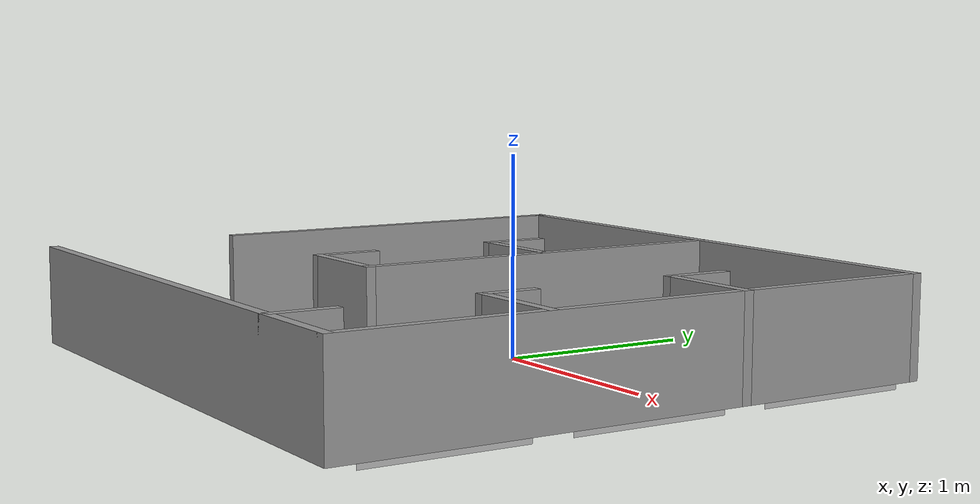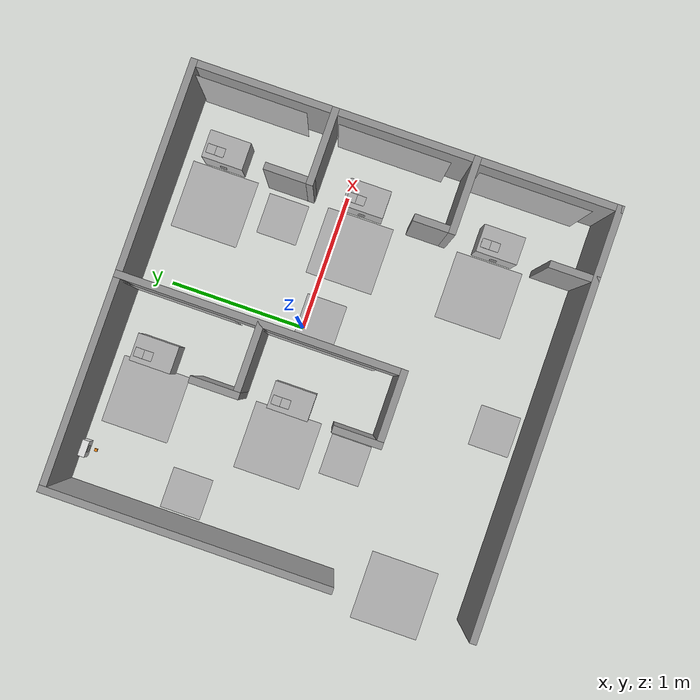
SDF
<?xml version='1.0'?>
<sdf version='1.7'>
  <model name='reinovo_raicom_oryxbot'>
    <link name='link_0'>
      <inertial>
        <mass>1</mass>
        <inertia>
          <ixx>0.166667</ixx>
          <ixy>0</ixy>
          <ixz>0</ixz>
          <iyy>0.166667</iyy>
          <iyz>0</iyz>
          <izz>0.166667</izz>
        </inertia>
        <pose>0 0 0 0 -0 0</pose>
      </inertial>
      <pose>-1.32 1.12 0.007 0 0 -1.5707</pose>
      <gravity>1</gravity>
      <self_collide>0</self_collide>
      <kinematic>0</kinematic>
      <enable_wind>0</enable_wind>
      <visual name='visual'>
        <pose>0 0 0 0 -0 0</pose>
        <geometry>
          <box>
            <size>0.02 0.02 0.014</size>
          </box>
        </geometry>
        <material>
          <lighting>1</lighting>
          <script>
            <uri>file://media/materials/scripts/gazebo.material</uri>
            <name>Gazebo/Orange</name>
          </script>
          <shader type='pixel'>
            <normal_map>__default__</normal_map>
          </shader>
        </material>
        <transparency>0</transparency>
        <cast_shadows>1</cast_shadows>
      </visual>
      <collision name='collision'>
        <laser_retro>0</laser_retro>
        <max_contacts>10</max_contacts>
        <pose>0 0 0 0 -0 0</pose>
        <geometry>
          <box>
            <size>0.02 0.02 0.014</size>
          </box>
        </geometry>
        <surface>
          <friction>
            <ode>
              <mu>1</mu>
              <mu2>1</mu2>
              <fdir1>0 0 0</fdir1>
              <slip1>0</slip1>
              <slip2>0</slip2>
            </ode>
            <torsional>
              <coefficient>1</coefficient>
              <patch_radius>0</patch_radius>
              <surface_radius>0</surface_radius>
              <use_patch_radius>1</use_patch_radius>
              <ode>
                <slip>0</slip>
              </ode>
            </torsional>
          </friction>
          <bounce>
            <restitution_coefficient>0</restitution_coefficient>
            <threshold>1e+06</threshold>
          </bounce>
          <contact>
            <collide_without_contact>0</collide_without_contact>
            <collide_without_contact_bitmask>1</collide_without_contact_bitmask>
            <collide_bitmask>1</collide_bitmask>
            <ode>
              <soft_cfm>0</soft_cfm>
              <soft_erp>0.2</soft_erp>
              <kp>1e+13</kp>
              <kd>1</kd>
              <max_vel>0.01</max_vel>
              <min_depth>0</min_depth>
            </ode>
            <bullet>
              <split_impulse>1</split_impulse>
              <split_impulse_penetration_threshold>-0.01</split_impulse_penetration_threshold>
              <soft_cfm>0</soft_cfm>
              <soft_erp>0.2</soft_erp>
              <kp>1e+13</kp>
              <kd>1</kd>
            </bullet>
          </contact>
        </surface>
      </collision>
      <sensor name='charge_contact' type='contact'>
        <contact>
          <collision>collision</collision>
          <topic>__default_topic__</topic>
        </contact>
        <plugin name='my_plugin' filename='libcontact.so'>
          <object>charge_port</object>
        </plugin>
      </sensor>
    </link>
    <model name='rei_begin'>
      <link name='link_0'>
        <visual name='visual'>
          <geometry>
            <mesh>
              <uri>model://reinovo_raicom_oryxbot/rei_begin/meshes/begin.dae</uri>
            </mesh>
          </geometry>
        </visual>
        <self_collide>0</self_collide>
        <inertial>
          <inertia>
            <ixx>1</ixx>
            <ixy>0</ixy>
            <ixz>0</ixz>
            <iyy>1</iyy>
            <iyz>0</iyz>
            <izz>1</izz>
          </inertia>
          <mass>1</mass>
          <pose>0 0 0 0 -0 0</pose>
        </inertial>
        <kinematic>0</kinematic>
        <enable_wind>0</enable_wind>
      </link>
      <pose>-1.6 -1.25 0.001 0 -0 0</pose>
    </model>
    <model name='rei_factory3'>
      <link name='link_0'>
        <visual name='visual'>
          <geometry>
            <mesh>
              <uri>model://reinovo_raicom_oryxbot/rei_factory3/meshes/factory3.dae</uri>
            </mesh>
          </geometry>
        </visual>
        <self_collide>0</self_collide>
        <inertial>
          <inertia>
            <ixx>1</ixx>
            <ixy>0</ixy>
            <ixz>0</ixz>
            <iyy>1</iyy>
            <iyz>0</iyz>
            <izz>1</izz>
          </inertia>
          <mass>1</mass>
          <pose>0 0 0 0 -0 0</pose>
        </inertial>
        <kinematic>0</kinematic>
        <enable_wind>0</enable_wind>
      </link>
      <pose>1.35 -1.2 0.2 1.5707 -0 -1.5707</pose>
    </model>
    <model name='rei_block_stage'>
      <static>0</static>
      <link name='block_stage_link'>
        <inertial>
          <mass>10</mass>
          <inertia>
            <ixx>1</ixx>
            <ixy>0</ixy>
            <ixz>0</ixz>
            <iyy>1</iyy>
            <iyz>0</iyz>
            <izz>1</izz>
          </inertia>
        </inertial>
        <collision name='collision'>
          <geometry>
            <box>
              <size>0.2 0.3 0.2</size>
            </box>
          </geometry>
        </collision>
        <visual name='visual_1'>
          <pose>0 0 0 0 -0 0</pose>
          <cast_shadows>0</cast_shadows>
          <geometry>
            <box>
              <size>0.2 0.3 0.2</size>
            </box>
          </geometry>
        </visual>
        <visual name='visual_2'>
          <pose>0.105 0 0 0 -1.5707 0</pose>
          <cast_shadows>0</cast_shadows>
          <geometry>
            <box>
              <size>0.05 0.05 0.001</size>
            </box>
          </geometry>
          <material>
            <script>
              <uri>model://rei_block_stage/materials/scripts</uri>
              <uri>model://rei_block_stage/materials/textures</uri>
              <name>reinovo/rei_block_stage</name>
            </script>
          </material>
        </visual>
        <visual name='visual_3'>
          <pose>0.03 0.1 -0.105 0 -0 0</pose>
          <cast_shadows>0</cast_shadows>
          <geometry>
            <box>
              <size>0.065 0.065 0.001</size>
            </box>
          </geometry>
          <material>
            <script>
              <uri>model://rei_block_stage/materials_goal/scripts</uri>
              <uri>model://rei_block_stage/materials_goal/textures</uri>
              <name>reinovo/rei_goal</name>
            </script>
          </material>
        </visual>
        <visual name='visual_4'>
          <pose>0.03 0.035 -0.105 0 -0 0</pose>
          <cast_shadows>0</cast_shadows>
          <geometry>
            <box>
              <size>0.065 0.065 0.001</size>
            </box>
          </geometry>
          <material>
            <script>
              <uri>model://rei_block_stage/materials_goal/scripts</uri>
              <uri>model://rei_block_stage/materials_goal/textures</uri>
              <name>reinovo/rei_goal</name>
            </script>
          </material>
        </visual>
      </link>
      <pose>-0.514479 0.904463 0.13453 3.14159 0.015927 3.14159</pose>
    </model>
    <model name='rei_block_stage_clone'>
      <static>0</static>
      <link name='block_stage_link'>
        <inertial>
          <mass>10</mass>
          <inertia>
            <ixx>1</ixx>
            <ixy>0</ixy>
            <ixz>0</ixz>
            <iyy>1</iyy>
            <iyz>0</iyz>
            <izz>1</izz>
          </inertia>
        </inertial>
        <collision name='collision'>
          <geometry>
            <box>
              <size>0.2 0.3 0.2</size>
            </box>
          </geometry>
        </collision>
        <visual name='visual_1'>
          <pose>0 0 0 0 -0 0</pose>
          <cast_shadows>0</cast_shadows>
          <geometry>
            <box>
              <size>0.2 0.3 0.2</size>
            </box>
          </geometry>
        </visual>
        <visual name='visual_2'>
          <pose>0.105 0 0 0 -1.5707 0</pose>
          <cast_shadows>0</cast_shadows>
          <geometry>
            <box>
              <size>0.05 0.05 0.001</size>
            </box>
          </geometry>
          <material>
            <script>
              <uri>model://rei_block_stage/materials/scripts</uri>
              <uri>model://rei_block_stage/materials/textures</uri>
              <name>reinovo/rei_block_stage</name>
            </script>
          </material>
        </visual>
        <visual name='visual_3'>
          <pose>0.03 0.1 -0.105 0 -0 0</pose>
          <cast_shadows>0</cast_shadows>
          <geometry>
            <box>
              <size>0.065 0.065 0.001</size>
            </box>
          </geometry>
          <material>
            <script>
              <uri>model://rei_block_stage/materials_goal/scripts</uri>
              <uri>model://rei_block_stage/materials_goal/textures</uri>
              <name>reinovo/rei_goal</name>
            </script>
          </material>
        </visual>
        <visual name='visual_4'>
          <pose>0.03 0.035 -0.105 0 -0 0</pose>
          <cast_shadows>0</cast_shadows>
          <geometry>
            <box>
              <size>0.065 0.065 0.001</size>
            </box>
          </geometry>
          <material>
            <script>
              <uri>model://rei_block_stage/materials_goal/scripts</uri>
              <uri>model://rei_block_stage/materials_goal/textures</uri>
              <name>reinovo/rei_goal</name>
            </script>
          </material>
        </visual>
      </link>
      <pose>-0.514479 -0.104706 0.13453 3.14159 0.015927 3.14159</pose>
    </model>
    <model name='rei_block_stage_clone_0'>
      <static>0</static>
      <link name='block_stage_link'>
        <inertial>
          <mass>10</mass>
          <inertia>
            <ixx>1</ixx>
            <ixy>0</ixy>
            <ixz>0</ixz>
            <iyy>1</iyy>
            <iyz>0</iyz>
            <izz>1</izz>
          </inertia>
        </inertial>
        <collision name='collision'>
          <geometry>
            <box>
              <size>0.2 0.3 0.2</size>
            </box>
          </geometry>
        </collision>
        <visual name='visual_1'>
          <pose>0 0 0 0 -0 0</pose>
          <cast_shadows>0</cast_shadows>
          <geometry>
            <box>
              <size>0.2 0.3 0.2</size>
            </box>
          </geometry>
        </visual>
        <visual name='visual_2'>
          <pose>0.105 0 0 0 -1.5707 0</pose>
          <cast_shadows>0</cast_shadows>
          <geometry>
            <box>
              <size>0.05 0.05 0.001</size>
            </box>
          </geometry>
          <material>
            <script>
              <uri>model://rei_block_stage/materials/scripts</uri>
              <uri>model://rei_block_stage/materials/textures</uri>
              <name>reinovo/rei_block_stage</name>
            </script>
          </material>
        </visual>
        <visual name='visual_3'>
          <pose>0.03 0.1 -0.105 0 -0 0</pose>
          <cast_shadows>0</cast_shadows>
          <geometry>
            <box>
              <size>0.065 0.065 0.001</size>
            </box>
          </geometry>
          <material>
            <script>
              <uri>model://rei_block_stage/materials_goal/scripts</uri>
              <uri>model://rei_block_stage/materials_goal/textures</uri>
              <name>reinovo/rei_goal</name>
            </script>
          </material>
        </visual>
        <visual name='visual_4'>
          <pose>0.03 0.035 -0.105 0 -0 0</pose>
          <cast_shadows>0</cast_shadows>
          <geometry>
            <box>
              <size>0.065 0.065 0.001</size>
            </box>
          </geometry>
          <material>
            <script>
              <uri>model://rei_block_stage/materials_goal/scripts</uri>
              <uri>model://rei_block_stage/materials_goal/textures</uri>
              <name>reinovo/rei_goal</name>
            </script>
          </material>
        </visual>
      </link>
      <pose>0.992586 0.903692 0.13453 3.14159 0.015927 3.14159</pose>
    </model>
    <model name='rei_block_stage_clone_1'>
      <static>0</static>
      <link name='block_stage_link'>
        <inertial>
          <mass>10</mass>
          <inertia>
            <ixx>1</ixx>
            <ixy>0</ixy>
            <ixz>0</ixz>
            <iyy>1</iyy>
            <iyz>0</iyz>
            <izz>1</izz>
          </inertia>
        </inertial>
        <collision name='collision'>
          <geometry>
            <box>
              <size>0.2 0.3 0.2</size>
            </box>
          </geometry>
        </collision>
        <visual name='visual_1'>
          <pose>0 0 0 0 -0 0</pose>
          <cast_shadows>0</cast_shadows>
          <geometry>
            <box>
              <size>0.2 0.3 0.2</size>
            </box>
          </geometry>
        </visual>
        <visual name='visual_2'>
          <pose>0.105 0 0 0 -1.5707 0</pose>
          <cast_shadows>0</cast_shadows>
          <geometry>
            <box>
              <size>0.05 0.05 0.001</size>
            </box>
          </geometry>
          <material>
            <script>
              <uri>model://rei_block_stage/materials/scripts</uri>
              <uri>model://rei_block_stage/materials/textures</uri>
              <name>reinovo/rei_block_stage</name>
            </script>
          </material>
        </visual>
        <visual name='visual_3'>
          <pose>0.03 0.1 -0.105 0 -0 0</pose>
          <cast_shadows>0</cast_shadows>
          <geometry>
            <box>
              <size>0.065 0.065 0.001</size>
            </box>
          </geometry>
          <material>
            <script>
              <uri>model://rei_block_stage/materials_goal/scripts</uri>
              <uri>model://rei_block_stage/materials_goal/textures</uri>
              <name>reinovo/rei_goal</name>
            </script>
          </material>
        </visual>
        <visual name='visual_4'>
          <pose>0.03 0.035 -0.105 0 -0 0</pose>
          <cast_shadows>0</cast_shadows>
          <geometry>
            <box>
              <size>0.065 0.065 0.001</size>
            </box>
          </geometry>
          <material>
            <script>
              <uri>model://rei_block_stage/materials_goal/scripts</uri>
              <uri>model://rei_block_stage/materials_goal/textures</uri>
              <name>reinovo/rei_goal</name>
            </script>
          </material>
        </visual>
      </link>
      <pose>0.992586 -0.135218 0.13453 3.14159 0.015927 3.14159</pose>
    </model>
    <model name='rei_block_stage_clone_2'>
      <static>0</static>
      <link name='block_stage_link'>
        <inertial>
          <mass>10</mass>
          <inertia>
            <ixx>1</ixx>
            <ixy>0</ixy>
            <ixz>0</ixz>
            <iyy>1</iyy>
            <iyz>0</iyz>
            <izz>1</izz>
          </inertia>
        </inertial>
        <collision name='collision'>
          <geometry>
            <box>
              <size>0.2 0.3 0.2</size>
            </box>
          </geometry>
        </collision>
        <visual name='visual_1'>
          <pose>0 0 0 0 -0 0</pose>
          <cast_shadows>0</cast_shadows>
          <geometry>
            <box>
              <size>0.2 0.3 0.2</size>
            </box>
          </geometry>
        </visual>
        <visual name='visual_2'>
          <pose>0.105 0 0 0 -1.5707 0</pose>
          <cast_shadows>0</cast_shadows>
          <geometry>
            <box>
              <size>0.05 0.05 0.001</size>
            </box>
          </geometry>
          <material>
            <script>
              <uri>model://rei_block_stage/materials/scripts</uri>
              <uri>model://rei_block_stage/materials/textures</uri>
              <name>reinovo/rei_block_stage</name>
            </script>
          </material>
        </visual>
        <visual name='visual_3'>
          <pose>0.03 0.1 -0.105 0 -0 0</pose>
          <cast_shadows>0</cast_shadows>
          <geometry>
            <box>
              <size>0.065 0.065 0.001</size>
            </box>
          </geometry>
          <material>
            <script>
              <uri>model://rei_block_stage/materials_goal/scripts</uri>
              <uri>model://rei_block_stage/materials_goal/textures</uri>
              <name>reinovo/rei_goal</name>
            </script>
          </material>
        </visual>
        <visual name='visual_4'>
          <pose>0.03 0.035 -0.105 0 -0 0</pose>
          <cast_shadows>0</cast_shadows>
          <geometry>
            <box>
              <size>0.065 0.065 0.001</size>
            </box>
          </geometry>
          <material>
            <script>
              <uri>model://rei_block_stage/materials_goal/scripts</uri>
              <uri>model://rei_block_stage/materials_goal/textures</uri>
              <name>reinovo/rei_goal</name>
            </script>
          </material>
        </visual>
      </link>
      <pose>0.992586 -1.1229 0.13453 3.14159 0.015927 3.14159</pose>
    </model>
    <model name='rei_goal'>
      <link name='link_0'>
        <visual name='visual'>
          <geometry>
            <mesh>
              <uri>model://reinovo_raicom_oryxbot/rei_goal/meshes/goal.dae</uri>
            </mesh>
          </geometry>
        </visual>
        <self_collide>0</self_collide>
        <inertial>
          <inertia>
            <ixx>1</ixx>
            <ixy>0</ixy>
            <ixz>0</ixz>
            <iyy>1</iyy>
            <iyz>0</iyz>
            <izz>1</izz>
          </inertia>
          <mass>1</mass>
          <pose>0 0 0 0 -0 0</pose>
        </inertial>
        <kinematic>0</kinematic>
        <enable_wind>0</enable_wind>
      </link>
      <pose>-0.856971 0.904463 0.005 0 -0 0</pose>
    </model>
    <model name='rei_goal_0'>
      <link name='link_0'>
        <visual name='visual'>
          <geometry>
            <mesh>
              <uri>model://reinovo_raicom_oryxbot/rei_goal/meshes/goal.dae</uri>
            </mesh>
          </geometry>
        </visual>
        <self_collide>0</self_collide>
        <inertial>
          <inertia>
            <ixx>1</ixx>
            <ixy>0</ixy>
            <ixz>0</ixz>
            <iyy>1</iyy>
            <iyz>0</iyz>
            <izz>1</izz>
          </inertia>
          <mass>1</mass>
          <pose>0 0 0 0 -0 0</pose>
        </inertial>
        <kinematic>0</kinematic>
        <enable_wind>0</enable_wind>
      </link>
      <pose>-0.858139 -0.104706 0.005 0 -0 0</pose>
    </model>
    <model name='rei_goal_1'>
      <link name='link_0'>
        <visual name='visual'>
          <geometry>
            <mesh>
              <uri>model://reinovo_raicom_oryxbot/rei_goal/meshes/goal.dae</uri>
            </mesh>
          </geometry>
        </visual>
        <self_collide>0</self_collide>
        <inertial>
          <inertia>
            <ixx>1</ixx>
            <ixy>0</ixy>
            <ixz>0</ixz>
            <iyy>1</iyy>
            <iyz>0</iyz>
            <izz>1</izz>
          </inertia>
          <mass>1</mass>
          <pose>0 0 0 0 -0 0</pose>
        </inertial>
        <kinematic>0</kinematic>
        <enable_wind>0</enable_wind>
      </link>
      <pose>0.641976 -1.1229 0.005 0 -0 0</pose>
    </model>
    <model name='rei_goal_2'>
      <link name='link_0'>
        <visual name='visual'>
          <geometry>
            <mesh>
              <uri>model://reinovo_raicom_oryxbot/rei_goal/meshes/goal.dae</uri>
            </mesh>
          </geometry>
        </visual>
        <self_collide>0</self_collide>
        <inertial>
          <inertia>
            <ixx>1</ixx>
            <ixy>0</ixy>
            <ixz>0</ixz>
            <iyy>1</iyy>
            <iyz>0</iyz>
            <izz>1</izz>
          </inertia>
          <mass>1</mass>
          <pose>0 0 0 0 -0 0</pose>
        </inertial>
        <kinematic>0</kinematic>
        <enable_wind>0</enable_wind>
      </link>
      <pose>0.641058 -0.135218 0.005 0 -0 0</pose>
    </model>
    <model name='rei_goal_3'>
      <link name='link_0'>
        <visual name='visual'>
          <geometry>
            <mesh>
              <uri>model://reinovo_raicom_oryxbot/rei_goal/meshes/goal.dae</uri>
            </mesh>
          </geometry>
        </visual>
        <self_collide>0</self_collide>
        <inertial>
          <inertia>
            <ixx>1</ixx>
            <ixy>0</ixy>
            <ixz>0</ixz>
            <iyy>1</iyy>
            <iyz>0</iyz>
            <izz>1</izz>
          </inertia>
          <mass>1</mass>
          <pose>0 0 0 0 -0 0</pose>
        </inertial>
        <kinematic>0</kinematic>
        <enable_wind>0</enable_wind>
      </link>
      <pose>0.642407 0.903692 0.005 0 -0 0</pose>
    </model>
    <model name='rei_factory2'>
      <link name='link_0'>
        <visual name='visual'>
          <geometry>
            <mesh>
              <uri>model://reinovo_raicom_oryxbot/rei_factory2/meshes/factory2.dae</uri>
            </mesh>
          </geometry>
        </visual>
        <self_collide>0</self_collide>
        <inertial>
          <inertia>
            <ixx>1</ixx>
            <ixy>0</ixy>
            <ixz>0</ixz>
            <iyy>1</iyy>
            <iyz>0</iyz>
            <izz>1</izz>
          </inertia>
          <mass>1</mass>
          <pose>0 0 0 0 -0 0</pose>
        </inertial>
        <kinematic>0</kinematic>
        <enable_wind>0</enable_wind>
      </link>
      <pose>1.35 -0.2 0.2 1.5707 -0 -1.5707</pose>
    </model>
    <model name='rei_factory1'>
      <link name='link_0'>
        <visual name='visual'>
          <geometry>
            <mesh>
              <uri>model://reinovo_raicom_oryxbot/rei_factory1/meshes/factory1.dae</uri>
            </mesh>
          </geometry>
        </visual>
        <self_collide>0</self_collide>
        <inertial>
          <inertia>
            <ixx>1</ixx>
            <ixy>0</ixy>
            <ixz>0</ixz>
            <iyy>1</iyy>
            <iyz>0</iyz>
            <izz>1</izz>
          </inertia>
          <mass>1</mass>
          <pose>0 0 0 0 -0 0</pose>
        </inertial>
        <kinematic>0</kinematic>
        <enable_wind>0</enable_wind>
      </link>
      <pose>1.35 0.825 0.2 1.5707 -0 -1.5707</pose>
    </model>
    <model name='rei_obs'>
      <link name='link_0'>
        <visual name='visual'>
          <geometry>
            <mesh>
              <uri>model://reinovo_raicom_oryxbot/rei_obs/meshes/obs.dae</uri>
            </mesh>
          </geometry>
        </visual>
        <self_collide>0</self_collide>
        <inertial>
          <inertia>
            <ixx>1</ixx>
            <ixy>0</ixy>
            <ixz>0</ixz>
            <iyy>1</iyy>
            <iyz>0</iyz>
            <izz>1</izz>
          </inertia>
          <mass>1</mass>
          <pose>0 0 0 0 -0 0</pose>
        </inertial>
        <kinematic>0</kinematic>
        <enable_wind>0</enable_wind>
      </link>
      <pose>-0.8 -0.6 0.005 0 -0 0</pose>
    </model>
    <model name='rei_obs_0'>
      <link name='link_0'>
        <visual name='visual'>
          <geometry>
            <mesh>
              <uri>model://reinovo_raicom_oryxbot/rei_obs/meshes/obs.dae</uri>
            </mesh>
          </geometry>
        </visual>
        <self_collide>0</self_collide>
        <inertial>
          <inertia>
            <ixx>1</ixx>
            <ixy>0</ixy>
            <ixz>0</ixz>
            <iyy>1</iyy>
            <iyz>0</iyz>
            <izz>1</izz>
          </inertia>
          <mass>1</mass>
          <pose>0 0 0 0 -0 0</pose>
        </inertial>
        <kinematic>0</kinematic>
        <enable_wind>0</enable_wind>
      </link>
      <pose>-1.4 0.4 0.005 0 -0 0</pose>
    </model>
    <model name='rei_obs_1'>
      <link name='link_0'>
        <visual name='visual'>
          <geometry>
            <mesh>
              <uri>model://reinovo_raicom_oryxbot/rei_obs/meshes/obs.dae</uri>
            </mesh>
          </geometry>
        </visual>
        <self_collide>0</self_collide>
        <inertial>
          <inertia>
            <ixx>1</ixx>
            <ixy>0</ixy>
            <ixz>0</ixz>
            <iyy>1</iyy>
            <iyz>0</iyz>
            <izz>1</izz>
          </inertia>
          <mass>1</mass>
          <pose>0 0 0 0 -0 0</pose>
        </inertial>
        <kinematic>0</kinematic>
        <enable_wind>0</enable_wind>
      </link>
      <pose>-0.25 -1.55 0.005 0 -0 0</pose>
    </model>
    <model name='rei_obs_2'>
      <link name='link_0'>
        <visual name='visual'>
          <geometry>
            <mesh>
              <uri>model://reinovo_raicom_oryxbot/rei_obs/meshes/obs.dae</uri>
            </mesh>
          </geometry>
        </visual>
        <self_collide>0</self_collide>
        <inertial>
          <inertia>
            <ixx>1</ixx>
            <ixy>0</ixy>
            <ixz>0</ixz>
            <iyy>1</iyy>
            <iyz>0</iyz>
            <izz>1</izz>
          </inertia>
          <mass>1</mass>
          <pose>0 0 0 0 -0 0</pose>
        </inertial>
        <kinematic>0</kinematic>
        <enable_wind>0</enable_wind>
      </link>
      <pose>0.7 0.4 0.005 0 -0 0</pose>
    </model>
    <model name='rei_obs_3'>
      <link name='link_0'>
        <visual name='visual'>
          <geometry>
            <mesh>
              <uri>model://reinovo_raicom_oryxbot/rei_obs/meshes/obs.dae</uri>
            </mesh>
          </geometry>
        </visual>
        <self_collide>0</self_collide>
        <inertial>
          <inertia>
            <ixx>1</ixx>
            <ixy>0</ixy>
            <ixz>0</ixz>
            <iyy>1</iyy>
            <iyz>0</iyz>
            <izz>1</izz>
          </inertia>
          <mass>1</mass>
          <pose>0 0 0 0 -0 0</pose>
        </inertial>
        <kinematic>0</kinematic>
        <enable_wind>0</enable_wind>
      </link>
      <pose>0.1 -0.1 0.005 0 -0 0</pose>
    </model>
    <model name='rei_factory4'>
      <link name='link_0'>
        <visual name='visual'>
          <geometry>
            <mesh>
              <uri>model://reinovo_raicom_oryxbot/rei_factory4/meshes/factory4.dae</uri>
            </mesh>
          </geometry>
        </visual>
        <self_collide>0</self_collide>
        <inertial>
          <inertia>
            <ixx>1</ixx>
            <ixy>0</ixy>
            <ixz>0</ixz>
            <iyy>1</iyy>
            <iyz>0</iyz>
            <izz>1</izz>
          </inertia>
          <mass>1</mass>
          <pose>0 0 0 0 -0 0</pose>
        </inertial>
        <kinematic>0</kinematic>
        <enable_wind>0</enable_wind>
      </link>
      <pose>-0.125 0.825 0.2 1.5707 -0 -1.5707</pose>
    </model>
    <model name='rei_factory5'>
      <link name='link_0'>
        <visual name='visual'>
          <geometry>
            <mesh>
              <uri>model://reinovo_raicom_oryxbot/rei_factory5/meshes/factory5.dae</uri>
            </mesh>
          </geometry>
        </visual>
        <self_collide>0</self_collide>
        <inertial>
          <inertia>
            <ixx>1</ixx>
            <ixy>0</ixy>
            <ixz>0</ixz>
            <iyy>1</iyy>
            <iyz>0</iyz>
            <izz>1</izz>
          </inertia>
          <mass>1</mass>
          <pose>0 0 0 0 -0 0</pose>
        </inertial>
        <kinematic>0</kinematic>
        <enable_wind>0</enable_wind>
      </link>
      <pose>-0.125 -0.18 0.2 1.5707 -0 -1.5707</pose>
    </model>
    <model name='reinovo_match'>
      <pose>-0.088531 -0.254283 0 0 -0 0</pose>
      <link name='Wall_0'>
        <collision name='Wall_0_Collision'>
          <laser_retro>500</laser_retro>
          <geometry>
            <box>
              <size>3.05 0.05 0.5</size>
            </box>
          </geometry>
          <pose>0 0 0.25 0 -0 0</pose>
          <max_contacts>10</max_contacts>
          <surface>
            <contact>
              <ode/>
            </contact>
            <bounce/>
            <friction>
              <torsional>
                <ode/>
              </torsional>
              <ode/>
            </friction>
          </surface>
        </collision>
        <visual name='Wall_0_Visual'>
          <pose>0 0 0.25 0 -0 0</pose>
          <geometry>
            <box>
              <size>3.05 0.05 0.5</size>
            </box>
          </geometry>
          <material>
            <script>
              <uri>file://media/materials/scripts/gazebo.material</uri>
              <name>Gazebo/Grey</name>
            </script>
            <ambient>1 1 1 1</ambient>
          </material>
          <meta>
            <layer>0</layer>
          </meta>
        </visual>
        <pose>0 -1.5 0 0 -0 0</pose>
        <self_collide>0</self_collide>
        <kinematic>0</kinematic>
        <enable_wind>0</enable_wind>
      </link>
      <link name='Wall_11'>
        <collision name='Wall_11_Collision'>
          <laser_retro>500</laser_retro>
          <geometry>
            <box>
              <size>0.3 0.05 0.5</size>
            </box>
          </geometry>
          <pose>0 0 0.25 0 -0 0</pose>
          <max_contacts>10</max_contacts>
          <surface>
            <contact>
              <ode/>
            </contact>
            <bounce/>
            <friction>
              <torsional>
                <ode/>
              </torsional>
              <ode/>
            </friction>
          </surface>
        </collision>
        <visual name='Wall_11_Visual'>
          <pose>0 0 0.25 0 -0 0</pose>
          <geometry>
            <box>
              <size>0.3 0.05 0.5</size>
            </box>
          </geometry>
          <material>
            <script>
              <uri>file://media/materials/scripts/gazebo.material</uri>
              <name>Gazebo/Grey</name>
            </script>
            <ambient>1 1 1 1</ambient>
          </material>
          <meta>
            <layer>0</layer>
          </meta>
        </visual>
        <pose>1 -0.375 0 0 -0 1.5708</pose>
        <self_collide>0</self_collide>
        <kinematic>0</kinematic>
        <enable_wind>0</enable_wind>
      </link>
      <link name='Wall_13'>
        <collision name='Wall_13_Collision'>
          <laser_retro>500</laser_retro>
          <geometry>
            <box>
              <size>0.35 0.05 0.5</size>
            </box>
          </geometry>
          <pose>0 0 0.25 0 -0 0</pose>
          <max_contacts>10</max_contacts>
          <surface>
            <contact>
              <ode/>
            </contact>
            <bounce/>
            <friction>
              <torsional>
                <ode/>
              </torsional>
              <ode/>
            </friction>
          </surface>
        </collision>
        <visual name='Wall_13_Visual'>
          <pose>0 0 0.25 0 -0 0</pose>
          <geometry>
            <box>
              <size>0.35 0.05 0.5</size>
            </box>
          </geometry>
          <material>
            <script>
              <uri>file://media/materials/scripts/gazebo.material</uri>
              <name>Gazebo/Grey</name>
            </script>
            <ambient>1 1 1 1</ambient>
          </material>
          <meta>
            <layer>0</layer>
          </meta>
        </visual>
        <pose>1 0.65 0 0 -0 1.5708</pose>
        <self_collide>0</self_collide>
        <kinematic>0</kinematic>
        <enable_wind>0</enable_wind>
      </link>
      <link name='Wall_16'>
        <collision name='Wall_16_Collision'>
          <laser_retro>500</laser_retro>
          <geometry>
            <box>
              <size>0.55 0.05 0.5</size>
            </box>
          </geometry>
          <pose>0 0 0.25 0 -0 0</pose>
          <max_contacts>10</max_contacts>
          <surface>
            <contact>
              <ode/>
            </contact>
            <bounce/>
            <friction>
              <torsional>
                <ode/>
              </torsional>
              <ode/>
            </friction>
          </surface>
        </collision>
        <visual name='Wall_16_Visual'>
          <pose>0 0 0.25 0 -0 0</pose>
          <geometry>
            <box>
              <size>0.55 0.05 0.5</size>
            </box>
          </geometry>
          <material>
            <script>
              <uri>file://media/materials/scripts/gazebo.material</uri>
              <name>Gazebo/Grey</name>
            </script>
            <ambient>1 1 1 1</ambient>
          </material>
          <meta>
            <layer>0</layer>
          </meta>
        </visual>
        <pose>1.25 0.5 0 0 -0 3.14159</pose>
        <self_collide>0</self_collide>
        <kinematic>0</kinematic>
        <enable_wind>0</enable_wind>
      </link>
      <link name='Wall_18'>
        <collision name='Wall_18_Collision'>
          <laser_retro>500</laser_retro>
          <geometry>
            <box>
              <size>0.55 0.05 0.5</size>
            </box>
          </geometry>
          <pose>0 0 0.25 0 -0 0</pose>
          <max_contacts>10</max_contacts>
          <surface>
            <contact>
              <ode/>
            </contact>
            <bounce/>
            <friction>
              <torsional>
                <ode/>
              </torsional>
              <ode/>
            </friction>
          </surface>
        </collision>
        <visual name='Wall_18_Visual'>
          <pose>0 0 0.25 0 -0 0</pose>
          <geometry>
            <box>
              <size>0.55 0.05 0.5</size>
            </box>
          </geometry>
          <material>
            <script>
              <uri>file://media/materials/scripts/gazebo.material</uri>
              <name>Gazebo/Grey</name>
            </script>
            <ambient>1 1 1 1</ambient>
          </material>
          <meta>
            <layer>0</layer>
          </meta>
        </visual>
        <pose>1.25 -0.5 0 0 -0 3.14159</pose>
        <self_collide>0</self_collide>
        <kinematic>0</kinematic>
        <enable_wind>0</enable_wind>
      </link>
      <link name='Wall_2'>
        <collision name='Wall_2_Collision'>
          <laser_retro>500</laser_retro>
          <geometry>
            <box>
              <size>3.05 0.05 0.5</size>
            </box>
          </geometry>
          <pose>0 0 0.25 0 -0 0</pose>
          <max_contacts>10</max_contacts>
          <surface>
            <contact>
              <ode/>
            </contact>
            <bounce/>
            <friction>
              <torsional>
                <ode/>
              </torsional>
              <ode/>
            </friction>
          </surface>
        </collision>
        <visual name='Wall_2_Visual'>
          <pose>0 0 0.25 0 -0 0</pose>
          <geometry>
            <box>
              <size>3.05 0.05 0.5</size>
            </box>
          </geometry>
          <material>
            <script>
              <uri>file://media/materials/scripts/gazebo.material</uri>
              <name>Gazebo/Grey</name>
            </script>
            <ambient>1 1 1 1</ambient>
          </material>
          <meta>
            <layer>0</layer>
          </meta>
        </visual>
        <pose>1.5 0 0 0 -0 1.5708</pose>
        <self_collide>0</self_collide>
        <kinematic>0</kinematic>
        <enable_wind>0</enable_wind>
      </link>
      <link name='Wall_20'>
        <collision name='Wall_20_Collision'>
          <laser_retro>500</laser_retro>
          <geometry>
            <box>
              <size>0.55 0.05 0.5</size>
            </box>
          </geometry>
          <pose>0 0 0.25 0 -0 0</pose>
          <max_contacts>10</max_contacts>
          <surface>
            <contact>
              <ode/>
            </contact>
            <bounce/>
            <friction>
              <torsional>
                <ode/>
              </torsional>
              <ode/>
            </friction>
          </surface>
        </collision>
        <visual name='Wall_20_Visual'>
          <pose>0 0 0.25 0 -0 0</pose>
          <geometry>
            <box>
              <size>0.55 0.05 0.5</size>
            </box>
          </geometry>
          <material>
            <script>
              <uri>file://media/materials/scripts/gazebo.material</uri>
              <name>Gazebo/Grey</name>
            </script>
            <ambient>1 1 1 1</ambient>
          </material>
          <meta>
            <layer>0</layer>
          </meta>
        </visual>
        <pose>-0.25 0.5 0 0 -0 3.14159</pose>
        <self_collide>0</self_collide>
        <kinematic>0</kinematic>
        <enable_wind>0</enable_wind>
      </link>
      <link name='Wall_22'>
        <collision name='Wall_22_Collision'>
          <laser_retro>500</laser_retro>
          <geometry>
            <box>
              <size>0.55 0.05 0.5</size>
            </box>
          </geometry>
          <pose>0 0 0.25 0 -0 0</pose>
          <max_contacts>10</max_contacts>
          <surface>
            <contact>
              <ode/>
            </contact>
            <bounce/>
            <friction>
              <torsional>
                <ode/>
              </torsional>
              <ode/>
            </friction>
          </surface>
        </collision>
        <visual name='Wall_22_Visual'>
          <pose>0 0 0.25 0 -0 0</pose>
          <geometry>
            <box>
              <size>0.55 0.05 0.5</size>
            </box>
          </geometry>
          <material>
            <script>
              <uri>file://media/materials/scripts/gazebo.material</uri>
              <name>Gazebo/Grey</name>
            </script>
            <ambient>1 1 1 1</ambient>
          </material>
          <meta>
            <layer>0</layer>
          </meta>
        </visual>
        <pose>-0.25 -0.5 0 0 -0 3.14159</pose>
        <self_collide>0</self_collide>
        <kinematic>0</kinematic>
        <enable_wind>0</enable_wind>
      </link>
      <link name='Wall_24'>
        <collision name='Wall_24_Collision'>
          <laser_retro>500</laser_retro>
          <geometry>
            <box>
              <size>2.05 0.05 0.5</size>
            </box>
          </geometry>
          <pose>0 0 0.25 0 -0 0</pose>
          <max_contacts>10</max_contacts>
          <surface>
            <contact>
              <ode/>
            </contact>
            <bounce/>
            <friction>
              <torsional>
                <ode/>
              </torsional>
              <ode/>
            </friction>
          </surface>
        </collision>
        <visual name='Wall_24_Visual'>
          <pose>0 0 0.25 0 -0 0</pose>
          <geometry>
            <box>
              <size>2.05 0.05 0.5</size>
            </box>
          </geometry>
          <material>
            <script>
              <uri>file://media/materials/scripts/gazebo.material</uri>
              <name>Gazebo/Grey</name>
            </script>
            <ambient>1 1 1 1</ambient>
          </material>
          <meta>
            <layer>0</layer>
          </meta>
        </visual>
        <pose>0 0.5 0 0 -0 -1.5708</pose>
        <self_collide>0</self_collide>
        <kinematic>0</kinematic>
        <enable_wind>0</enable_wind>
      </link>
      <link name='Wall_26'>
        <collision name='Wall_26_Collision'>
          <laser_retro>500</laser_retro>
          <geometry>
            <box>
              <size>0.35 0.05 0.5</size>
            </box>
          </geometry>
          <pose>0 0 0.25 0 -0 0</pose>
          <max_contacts>10</max_contacts>
          <surface>
            <contact>
              <ode/>
            </contact>
            <bounce/>
            <friction>
              <torsional>
                <ode/>
              </torsional>
              <ode/>
            </friction>
          </surface>
        </collision>
        <visual name='Wall_26_Visual'>
          <pose>0 0 0.25 0 -0 0</pose>
          <geometry>
            <box>
              <size>0.35 0.05 0.5</size>
            </box>
          </geometry>
          <material>
            <script>
              <uri>file://media/materials/scripts/gazebo.material</uri>
              <name>Gazebo/Grey</name>
            </script>
            <ambient>1 1 1 1</ambient>
          </material>
          <meta>
            <layer>0</layer>
          </meta>
        </visual>
        <pose>-0.5 0.65 0 0 -0 1.5708</pose>
        <self_collide>0</self_collide>
        <kinematic>0</kinematic>
        <enable_wind>0</enable_wind>
      </link>
      <link name='Wall_28'>
        <collision name='Wall_28_Collision'>
          <laser_retro>500</laser_retro>
          <geometry>
            <box>
              <size>0.35 0.05 0.5</size>
            </box>
          </geometry>
          <pose>0 0 0.25 0 -0 0</pose>
          <max_contacts>10</max_contacts>
          <surface>
            <contact>
              <ode/>
            </contact>
            <bounce/>
            <friction>
              <torsional>
                <ode/>
              </torsional>
              <ode/>
            </friction>
          </surface>
        </collision>
        <visual name='Wall_28_Visual'>
          <pose>0 0 0.25 0 -0 0</pose>
          <geometry>
            <box>
              <size>0.35 0.05 0.5</size>
            </box>
          </geometry>
          <material>
            <script>
              <uri>file://media/materials/scripts/gazebo.material</uri>
              <name>Gazebo/Grey</name>
            </script>
            <ambient>1 1 1 1</ambient>
          </material>
          <meta>
            <layer>0</layer>
          </meta>
        </visual>
        <pose>-0.5 -0.35 0 0 -0 1.5708</pose>
        <self_collide>0</self_collide>
        <kinematic>0</kinematic>
        <enable_wind>0</enable_wind>
      </link>
      <link name='Wall_4'>
        <collision name='Wall_4_Collision'>
          <laser_retro>500</laser_retro>
          <geometry>
            <box>
              <size>3.05 0.05 0.5</size>
            </box>
          </geometry>
          <pose>0 0 0.25 0 -0 0</pose>
          <max_contacts>10</max_contacts>
          <surface>
            <contact>
              <ode/>
            </contact>
            <bounce/>
            <friction>
              <torsional>
                <ode/>
              </torsional>
              <ode/>
            </friction>
          </surface>
        </collision>
        <visual name='Wall_4_Visual'>
          <pose>0 0 0.25 0 -0 0</pose>
          <geometry>
            <box>
              <size>3.05 0.05 0.5</size>
            </box>
          </geometry>
          <material>
            <script>
              <uri>file://media/materials/scripts/gazebo.material</uri>
              <name>Gazebo/Grey</name>
            </script>
            <ambient>1 1 1 1</ambient>
          </material>
          <meta>
            <layer>0</layer>
          </meta>
        </visual>
        <pose>0 1.5 0 0 -0 3.14159</pose>
        <self_collide>0</self_collide>
        <kinematic>0</kinematic>
        <enable_wind>0</enable_wind>
      </link>
      <link name='Wall_6'>
        <collision name='Wall_6_Collision'>
          <laser_retro>500</laser_retro>
          <geometry>
            <box>
              <size>2.05 0.05 0.5</size>
            </box>
          </geometry>
          <pose>0 0 0.25 0 -0 0</pose>
          <max_contacts>10</max_contacts>
          <surface>
            <contact>
              <ode/>
            </contact>
            <bounce/>
            <friction>
              <torsional>
                <ode/>
              </torsional>
              <ode/>
            </friction>
          </surface>
        </collision>
        <visual name='Wall_6_Visual'>
          <pose>0 0 0.25 0 -0 0</pose>
          <geometry>
            <box>
              <size>2.05 0.05 0.5</size>
            </box>
          </geometry>
          <material>
            <script>
              <uri>file://media/materials/scripts/gazebo.material</uri>
              <name>Gazebo/Grey</name>
            </script>
            <ambient>1 1 1 1</ambient>
          </material>
          <meta>
            <layer>0</layer>
          </meta>
        </visual>
        <pose>-1.5 0.5 0 0 -0 -1.5708</pose>
        <self_collide>0</self_collide>
        <kinematic>0</kinematic>
        <enable_wind>0</enable_wind>
      </link>
      <link name='Wall_8'>
        <collision name='Wall_8_Collision'>
          <laser_retro>500</laser_retro>
          <geometry>
            <box>
              <size>0.35 0.05 0.5</size>
            </box>
          </geometry>
          <pose>0 0 0.25 0 -0 0</pose>
          <max_contacts>10</max_contacts>
          <surface>
            <contact>
              <ode/>
            </contact>
            <bounce/>
            <friction>
              <torsional>
                <ode/>
              </torsional>
              <ode/>
            </friction>
          </surface>
        </collision>
        <visual name='Wall_8_Visual'>
          <pose>0 0 0.25 0 -0 0</pose>
          <geometry>
            <box>
              <size>0.35 0.05 0.5</size>
            </box>
          </geometry>
          <material>
            <script>
              <uri>file://media/materials/scripts/gazebo.material</uri>
              <name>Gazebo/Grey</name>
            </script>
            <ambient>1 1 1 1</ambient>
          </material>
          <meta>
            <layer>0</layer>
          </meta>
        </visual>
        <pose>1 -1.35 0 0 -0 1.5708</pose>
        <self_collide>0</self_collide>
        <kinematic>0</kinematic>
        <enable_wind>0</enable_wind>
      </link>
      <static>1</static>
    </model>
    <model name='small_marker_charge_pile'>
      <link name='link_0'>
        <inertial>
          <mass>10</mass>
          <inertia>
            <ixx>0.01875</ixx>
            <ixy>0</ixy>
            <ixz>0</ixz>
            <iyy>0.00883333</iyy>
            <iyz>0</iyz>
            <izz>0.0140833</izz>
          </inertia>
          <pose>0 0 0 0 -0 0</pose>
        </inertial>
        <pose>0.002297 -0.003336 0.045 0 -0 0</pose>
        <gravity>1</gravity>
        <self_collide>0</self_collide>
        <kinematic>0</kinematic>
        <enable_wind>0</enable_wind>
        <visual name='visual'>
          <pose>0 0 0 0 -0 0</pose>
          <geometry>
            <box>
              <size>0.05 0.12 0.09</size>
            </box>
          </geometry>
          <material>
            <lighting>1</lighting>
            <script>
              <uri>file://media/materials/scripts/gazebo.material</uri>
              <name>Gazebo/White</name>
            </script>
            <shader type='pixel'>
              <normal_map>__default__</normal_map>
            </shader>
            <ambient>1 1 1 1</ambient>
            <diffuse>1 1 1 1</diffuse>
            <specular>1 1 1 1</specular>
            <emissive>0 0 0 1</emissive>
          </material>
          <transparency>0</transparency>
          <cast_shadows>1</cast_shadows>
        </visual>
        <collision name='collision'>
          <laser_retro>0</laser_retro>
          <max_contacts>10</max_contacts>
          <pose>0 0 0 0 -0 0</pose>
          <geometry>
            <box>
              <size>0.05 0.12 0.09</size>
            </box>
          </geometry>
          <surface>
            <friction>
              <ode>
                <mu>1</mu>
                <mu2>1</mu2>
                <fdir1>0 0 0</fdir1>
                <slip1>0</slip1>
                <slip2>0</slip2>
              </ode>
              <torsional>
                <coefficient>1</coefficient>
                <patch_radius>0</patch_radius>
                <surface_radius>0</surface_radius>
                <use_patch_radius>1</use_patch_radius>
                <ode>
                  <slip>0</slip>
                </ode>
              </torsional>
            </friction>
            <bounce>
              <restitution_coefficient>0</restitution_coefficient>
              <threshold>1e+06</threshold>
            </bounce>
            <contact>
              <collide_without_contact>0</collide_without_contact>
              <collide_without_contact_bitmask>1</collide_without_contact_bitmask>
              <collide_bitmask>1</collide_bitmask>
              <ode>
                <soft_cfm>0</soft_cfm>
                <soft_erp>0.2</soft_erp>
                <kp>1e+13</kp>
                <kd>1</kd>
                <max_vel>0.01</max_vel>
                <min_depth>0</min_depth>
              </ode>
              <bullet>
                <split_impulse>1</split_impulse>
                <split_impulse_penetration_threshold>-0.01</split_impulse_penetration_threshold>
                <soft_cfm>0</soft_cfm>
                <soft_erp>0.2</soft_erp>
                <kp>1e+13</kp>
                <kd>1</kd>
              </bullet>
            </contact>
          </surface>
        </collision>
      </link>
      <link name='link_1'>
        <inertial>
          <mass>1</mass>
          <inertia>
            <ixx>0.166667</ixx>
            <ixy>0</ixy>
            <ixz>0</ixz>
            <iyy>0.166667</iyy>
            <iyz>0</iyz>
            <izz>0.166667</izz>
          </inertia>
          <pose>0 0 0 0 -0 0</pose>
        </inertial>
        <pose>0.028 0 0.05 0 -0 0</pose>
        <gravity>1</gravity>
        <self_collide>0</self_collide>
        <kinematic>0</kinematic>
        <enable_wind>0</enable_wind>
        <visual name='visual'>
          <pose>0 0 0 0 -0 0</pose>
          <geometry>
            <box>
              <size>0.0001 0.05 0.05</size>
            </box>
          </geometry>
          <material>
            <lighting>1</lighting>
            <script>
              <uri>model://small_marker_charge_pile/materials/textures</uri>
              <uri>model://small_marker_charge_pile/materials/scripts</uri>
              <name>reinovo/ar_track_1</name>
            </script>
            <shader type='pixel'>
              <normal_map>__default__</normal_map>
            </shader>
            <specular>0.01 0.01 0.01 1</specular>
            <emissive>0 0 0 1</emissive>
          </material>
          <transparency>0</transparency>
          <cast_shadows>1</cast_shadows>
        </visual>
        <collision name='collision'>
          <laser_retro>0</laser_retro>
          <max_contacts>10</max_contacts>
          <pose>0 0 0 0 -0 0</pose>
          <geometry>
            <box>
              <size>0.001 0.05 0.05</size>
            </box>
          </geometry>
          <surface>
            <friction>
              <ode>
                <mu>1</mu>
                <mu2>1</mu2>
                <fdir1>0 0 0</fdir1>
                <slip1>0</slip1>
                <slip2>0</slip2>
              </ode>
              <torsional>
                <coefficient>1</coefficient>
                <patch_radius>0</patch_radius>
                <surface_radius>0</surface_radius>
                <use_patch_radius>1</use_patch_radius>
                <ode>
                  <slip>0</slip>
                </ode>
              </torsional>
            </friction>
            <bounce>
              <restitution_coefficient>0</restitution_coefficient>
              <threshold>1e+06</threshold>
            </bounce>
            <contact>
              <collide_without_contact>0</collide_without_contact>
              <collide_without_contact_bitmask>1</collide_without_contact_bitmask>
              <collide_bitmask>1</collide_bitmask>
              <ode>
                <soft_cfm>0</soft_cfm>
                <soft_erp>0.2</soft_erp>
                <kp>1e+13</kp>
                <kd>1</kd>
                <max_vel>0.01</max_vel>
                <min_depth>0</min_depth>
              </ode>
              <bullet>
                <split_impulse>1</split_impulse>
                <split_impulse_penetration_threshold>-0.01</split_impulse_penetration_threshold>
                <soft_cfm>0</soft_cfm>
                <soft_erp>0.2</soft_erp>
                <kp>1e+13</kp>
                <kd>1</kd>
              </bullet>
            </contact>
          </surface>
        </collision>
      </link>
      <joint name='link_0_JOINT_0' type='fixed'>
        <parent>link_0</parent>
        <child>link_1</child>
        <pose>0 0 0 0 -0 0</pose>
        <physics>
          <ode>
            <limit>
              <cfm>0</cfm>
              <erp>0.2</erp>
            </limit>
            <suspension>
              <cfm>0</cfm>
              <erp>0.2</erp>
            </suspension>
          </ode>
        </physics>
      </joint>
      <static>0</static>
      <allow_auto_disable>1</allow_auto_disable>
      <pose>-1.32 1.19 0 0 0 -1.5707</pose>
    </model>
    <joint name='Wall_0_JOINT_9' type='fixed'>
      <parent>reinovo_match::Wall_0</parent>
      <child>rei_obs_1::link_0</child>
      <pose>0 0 0 0 -0 0</pose>
      <physics>
        <ode>
          <limit>
            <cfm>0</cfm>
            <erp>0.2</erp>
          </limit>
          <suspension>
            <cfm>0</cfm>
            <erp>0.2</erp>
          </suspension>
        </ode>
      </physics>
    </joint>
    <joint name='Wall_11_JOINT_14' type='fixed'>
      <parent>reinovo_match::Wall_11</parent>
      <child>rei_goal_2::link_0</child>
      <pose>0 0 0 0 -0 0</pose>
      <physics>
        <ode>
          <limit>
            <cfm>0</cfm>
            <erp>0.2</erp>
          </limit>
          <suspension>
            <cfm>0</cfm>
            <erp>0.2</erp>
          </suspension>
        </ode>
      </physics>
    </joint>
    <joint name='Wall_13_JOINT_15' type='fixed'>
      <parent>reinovo_match::Wall_13</parent>
      <child>rei_goal_3::link_0</child>
      <pose>0 0 0 0 -0 0</pose>
      <physics>
        <ode>
          <limit>
            <cfm>0</cfm>
            <erp>0.2</erp>
          </limit>
          <suspension>
            <cfm>0</cfm>
            <erp>0.2</erp>
          </suspension>
        </ode>
      </physics>
    </joint>
    <joint name='Wall_13_JOINT_16' type='fixed'>
      <parent>reinovo_match::Wall_13</parent>
      <child>rei_obs_2::link_0</child>
      <pose>0 0 0 0 -0 0</pose>
      <physics>
        <ode>
          <limit>
            <cfm>0</cfm>
            <erp>0.2</erp>
          </limit>
          <suspension>
            <cfm>0</cfm>
            <erp>0.2</erp>
          </suspension>
        </ode>
      </physics>
    </joint>
    <joint name='Wall_24_JOINT_17' type='fixed'>
      <parent>reinovo_match::Wall_24</parent>
      <child>rei_obs_3::link_0</child>
      <pose>0 0 0 0 -0 0</pose>
      <physics>
        <ode>
          <limit>
            <cfm>0</cfm>
            <erp>0.2</erp>
          </limit>
          <suspension>
            <cfm>0</cfm>
            <erp>0.2</erp>
          </suspension>
        </ode>
      </physics>
    </joint>
    <joint name='Wall_24_JOINT_2' type='fixed'>
      <parent>reinovo_match::Wall_24</parent>
      <child>rei_factory4::link_0</child>
      <pose>0 0 0 0 -0 0</pose>
      <physics>
        <ode>
          <limit>
            <cfm>0</cfm>
            <erp>0.2</erp>
          </limit>
          <suspension>
            <cfm>0</cfm>
            <erp>0.2</erp>
          </suspension>
        </ode>
      </physics>
    </joint>
    <joint name='Wall_24_JOINT_5' type='fixed'>
      <parent>reinovo_match::Wall_24</parent>
      <child>rei_factory5::link_0</child>
      <pose>0 0 0 0 -0 0</pose>
      <physics>
        <ode>
          <limit>
            <cfm>0</cfm>
            <erp>0.2</erp>
          </limit>
          <suspension>
            <cfm>0</cfm>
            <erp>0.2</erp>
          </suspension>
        </ode>
      </physics>
    </joint>
    <joint name='Wall_26_JOINT_4' type='fixed'>
      <parent>reinovo_match::Wall_26</parent>
      <child>rei_goal::link_0</child>
      <pose>0 0 0 0 -0 0</pose>
      <physics>
        <ode>
          <limit>
            <cfm>0</cfm>
            <erp>0.2</erp>
          </limit>
          <suspension>
            <cfm>0</cfm>
            <erp>0.2</erp>
          </suspension>
        </ode>
      </physics>
    </joint>
    <joint name='Wall_28_JOINT_6' type='fixed'>
      <parent>reinovo_match::Wall_28</parent>
      <child>rei_goal_0::link_0</child>
      <pose>0 0 0 0 -0 0</pose>
      <physics>
        <ode>
          <limit>
            <cfm>0</cfm>
            <erp>0.2</erp>
          </limit>
          <suspension>
            <cfm>0</cfm>
            <erp>0.2</erp>
          </suspension>
        </ode>
      </physics>
    </joint>
    <joint name='Wall_28_JOINT_7' type='fixed'>
      <parent>reinovo_match::Wall_28</parent>
      <child>rei_obs::link_0</child>
      <pose>0 0 0 0 -0 0</pose>
      <physics>
        <ode>
          <limit>
            <cfm>0</cfm>
            <erp>0.2</erp>
          </limit>
          <suspension>
            <cfm>0</cfm>
            <erp>0.2</erp>
          </suspension>
        </ode>
      </physics>
    </joint>
    <joint name='Wall_2_JOINT_10' type='fixed'>
      <parent>reinovo_match::Wall_2</parent>
      <child>rei_factory3::link_0</child>
      <pose>0 0 0 0 -0 0</pose>
      <physics>
        <ode>
          <limit>
            <cfm>0</cfm>
            <erp>0.2</erp>
          </limit>
          <suspension>
            <cfm>0</cfm>
            <erp>0.2</erp>
          </suspension>
        </ode>
      </physics>
    </joint>
    <joint name='Wall_2_JOINT_11' type='fixed'>
      <parent>reinovo_match::Wall_2</parent>
      <child>rei_factory2::link_0</child>
      <pose>0 0 0 0 -0 0</pose>
      <physics>
        <ode>
          <limit>
            <cfm>0</cfm>
            <erp>0.2</erp>
          </limit>
          <suspension>
            <cfm>0</cfm>
            <erp>0.2</erp>
          </suspension>
        </ode>
      </physics>
    </joint>
    <joint name='Wall_2_JOINT_12' type='fixed'>
      <parent>reinovo_match::Wall_2</parent>
      <child>rei_factory1::link_0</child>
      <pose>0 0 0 0 -0 0</pose>
      <physics>
        <ode>
          <limit>
            <cfm>0</cfm>
            <erp>0.2</erp>
          </limit>
          <suspension>
            <cfm>0</cfm>
            <erp>0.2</erp>
          </suspension>
        </ode>
      </physics>
    </joint>
    <joint name='Wall_6_JOINT_0' type='fixed'>
      <parent>reinovo_match::Wall_6</parent>
      <child>rei_begin::link_0</child>
      <pose>0 0 0 0 -0 0</pose>
      <physics>
        <ode>
          <limit>
            <cfm>0</cfm>
            <erp>0.2</erp>
          </limit>
          <suspension>
            <cfm>0</cfm>
            <erp>0.2</erp>
          </suspension>
        </ode>
      </physics>
    </joint>
    <joint name='Wall_6_JOINT_8' type='fixed'>
      <parent>reinovo_match::Wall_6</parent>
      <child>rei_obs_0::link_0</child>
      <pose>0 0 0 0 -0 0</pose>
      <physics>
        <ode>
          <limit>
            <cfm>0</cfm>
            <erp>0.2</erp>
          </limit>
          <suspension>
            <cfm>0</cfm>
            <erp>0.2</erp>
          </suspension>
        </ode>
      </physics>
    </joint>
    <joint name='Wall_8_JOINT_13' type='fixed'>
      <parent>reinovo_match::Wall_8</parent>
      <child>rei_goal_1::link_0</child>
      <pose>0 0 0 0 -0 0</pose>
      <physics>
        <ode>
          <limit>
            <cfm>0</cfm>
            <erp>0.2</erp>
          </limit>
          <suspension>
            <cfm>0</cfm>
            <erp>0.2</erp>
          </suspension>
        </ode>
      </physics>
    </joint>
    <joint name='link_0_JOINT_6' type='fixed'>
      <parent>rei_goal::link_0</parent>
      <child>rei_block_stage::block_stage_link</child>
      <pose>0 0 0 0 -0 0</pose>
      <physics>
        <ode>
          <limit>
            <cfm>0</cfm>
            <erp>0.2</erp>
          </limit>
          <suspension>
            <cfm>0</cfm>
            <erp>0.2</erp>
          </suspension>
        </ode>
      </physics>
    </joint>
    <joint name='link_0_JOINT_7' type='fixed'>
      <parent>rei_goal_0::link_0</parent>
      <child>rei_block_stage_clone::block_stage_link</child>
      <pose>0 0 0 0 -0 0</pose>
      <physics>
        <ode>
          <limit>
            <cfm>0</cfm>
            <erp>0.2</erp>
          </limit>
          <suspension>
            <cfm>0</cfm>
            <erp>0.2</erp>
          </suspension>
        </ode>
      </physics>
    </joint>
    <joint name='link_0_JOINT_5' type='fixed'>
      <parent>rei_goal_1::link_0</parent>
      <child>rei_block_stage_clone_2::block_stage_link</child>
      <pose>0 0 0 0 -0 0</pose>
      <physics>
        <ode>
          <limit>
            <cfm>0</cfm>
            <erp>0.2</erp>
          </limit>
          <suspension>
            <cfm>0</cfm>
            <erp>0.2</erp>
          </suspension>
        </ode>
      </physics>
    </joint>
    <joint name='link_0_JOINT_4' type='fixed'>
      <parent>rei_goal_2::link_0</parent>
      <child>rei_block_stage_clone_1::block_stage_link</child>
      <pose>0 0 0 0 -0 0</pose>
      <physics>
        <ode>
          <limit>
            <cfm>0</cfm>
            <erp>0.2</erp>
          </limit>
          <suspension>
            <cfm>0</cfm>
            <erp>0.2</erp>
          </suspension>
        </ode>
      </physics>
    </joint>
    <joint name='link_0_JOINT_3' type='fixed'>
      <parent>rei_goal_3::link_0</parent>
      <child>rei_block_stage_clone_0::block_stage_link</child>
      <pose>0 0 0 0 -0 0</pose>
      <physics>
        <ode>
          <limit>
            <cfm>0</cfm>
            <erp>0.2</erp>
          </limit>
          <suspension>
            <cfm>0</cfm>
            <erp>0.2</erp>
          </suspension>
        </ode>
      </physics>
    </joint>
    <joint name='Wall_4_JOINT_0' type='fixed'>
      <parent>reinovo_match::Wall_4</parent>
      <child>small_marker_charge_pile::link_0</child>
      <pose>0 0 0 0 -0 0</pose>
      <physics>
        <ode>
          <limit>
            <cfm>0</cfm>
            <erp>0.2</erp>
          </limit>
          <suspension>
            <cfm>0</cfm>
            <erp>0.2</erp>
          </suspension>
        </ode>
      </physics>
    </joint>
    <joint name='link_0_JOINT_2' type='prismatic'>
      <parent>small_marker_charge_pile::link_0</parent>
      <child>link_0</child>
      <pose>0 0 0 0 -0 0</pose>
      <axis>
        <xyz>0 1 0</xyz>
        <dynamics>
          <damping>100</damping>
          <spring_reference>0</spring_reference>
          <spring_stiffness>1000</spring_stiffness>
        </dynamics>
      </axis>
      <physics>
        <ode>
          <limit>
            <cfm>0</cfm>
            <erp>0.2</erp>
          </limit>
          <suspension>
            <cfm>0</cfm>
            <erp>0.2</erp>
          </suspension>
        </ode>
      </physics>
    </joint>
    <static>0</static>
    <allow_auto_disable>1</allow_auto_disable>
  </model>
</sdf>
